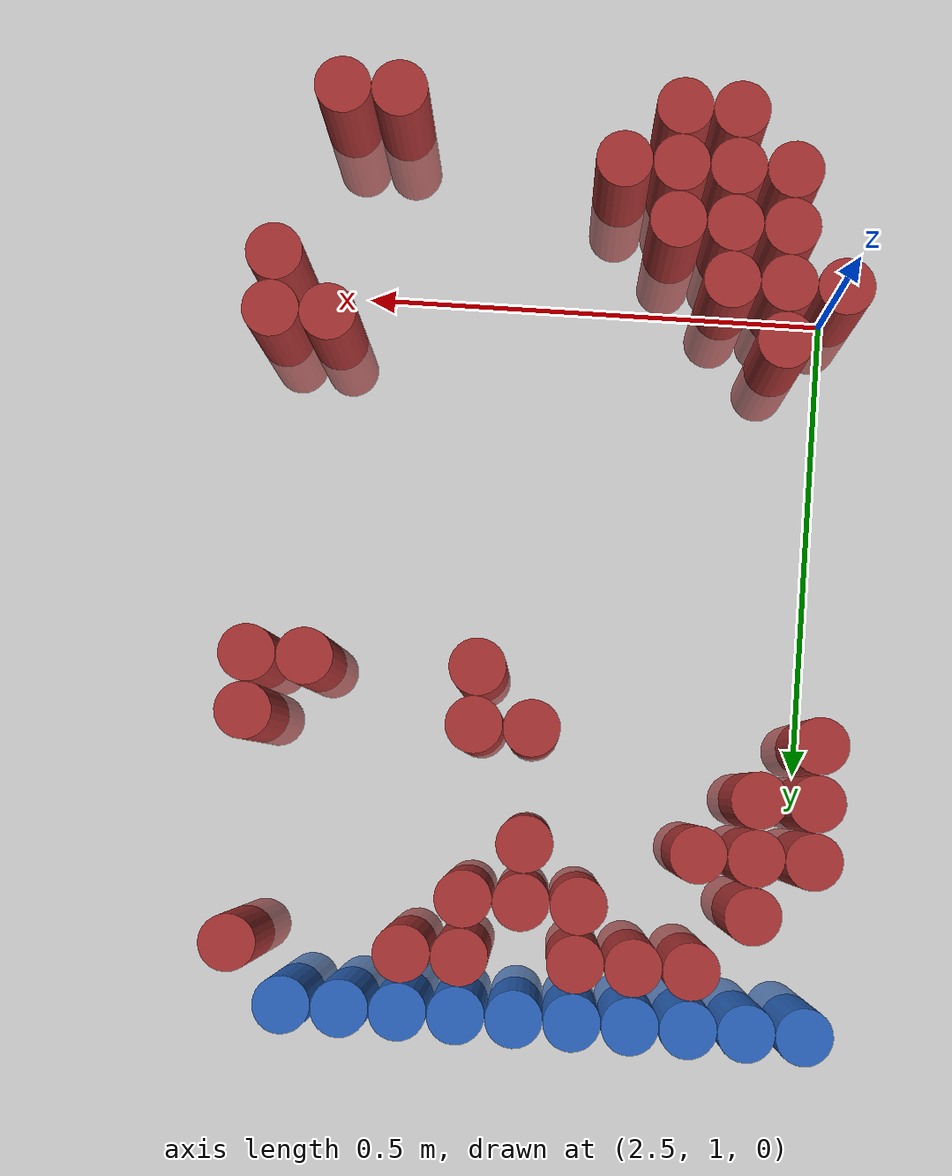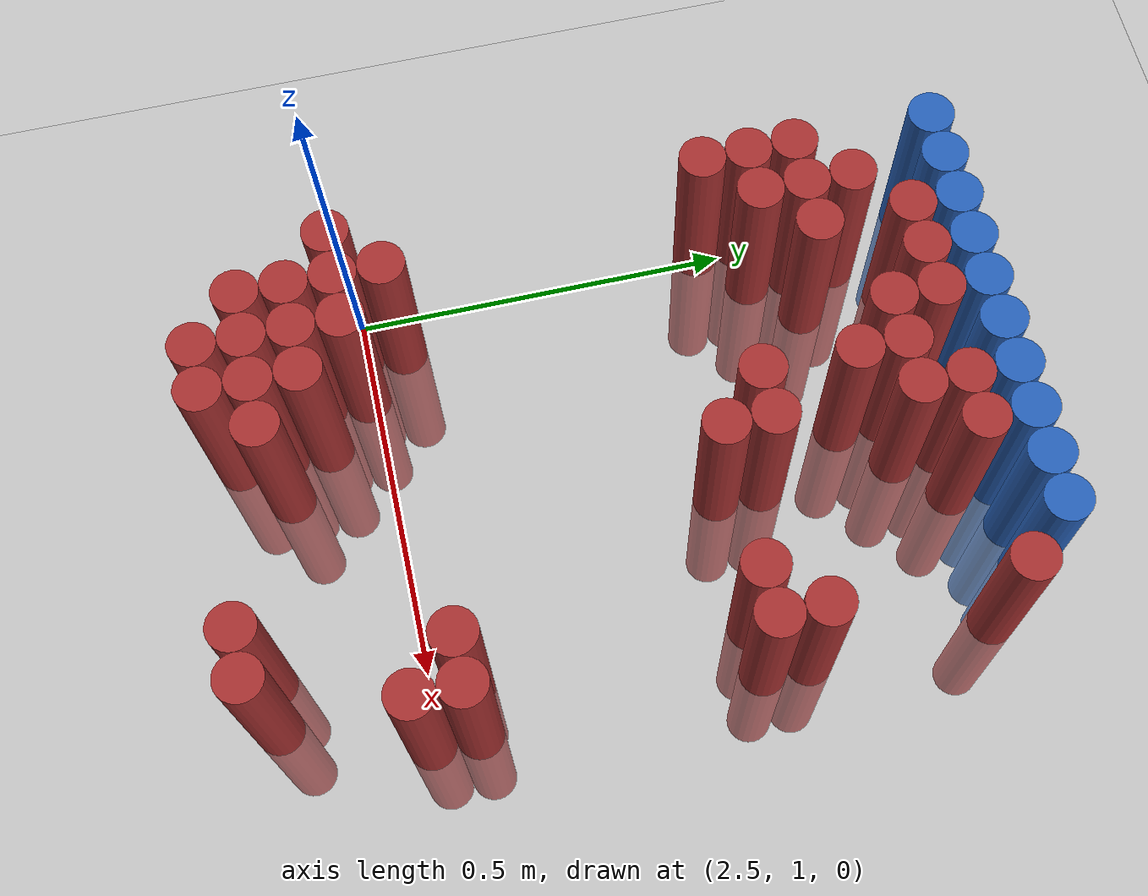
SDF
<sdf version="1.6">
 <world name="default">
  <model name="ground_plane">
   <static>1</static>
   <link name="link">
    <collision name="collision">
     <geometry><plane><normal>0 0 1</normal><size>100 100</size></plane></geometry>
     <surface><friction><ode><mu>100</mu><mu2>50</mu2></ode></friction></surface>
    </collision>
    <visual name="visual">
     <cast_shadows>0</cast_shadows>
     <geometry><plane><normal>0 0 1</normal><size>100 100</size></plane></geometry>
     <material>
      <script><uri>file://media/materials/scripts/gazebo.material</uri><name>Gazebo/Grey</name></script>
     </material>
    </visual>
   </link>
  </model>
  <model name="unit_cylinder_102">
   <static>1</static>
   <pose>2.490000 1.770000 0.000000 0.000000 0.000000 0.000000</pose>
   <link name="link">
    <inertial>
     <mass>1</mass>
     <inertia><ixx>0.145833</ixx><ixy>0</ixy><ixz>0</ixz><iyy>0.145833</iyy><iyz>0</iyz><izz>0.125</izz></inertia>
    </inertial>
    <collision name="collision">
     <geometry><cylinder><radius>0.030000</radius><length>0.5</length></cylinder></geometry>
    </collision>
    <visual name="visual">
     <geometry><cylinder><radius>0.030000</radius><length>0.5</length></cylinder></geometry>
     <material>
      <ambient>0.152000 0.379000 0.720000 1</ambient>
      <diffuse>0.152000 0.379000 0.720000 1</diffuse>
     </material>
     <material>
      <script><name>Gazebo/Grey</name><uri>file://media/materials/scripts/gazebo.material</uri></script>
     </material>
    </visual>
   </link>
  </model>
  <model name="unit_cylinder_103">
   <static>1</static>
   <pose>2.550000 1.770000 0.000000 0.000000 0.000000 0.000000</pose>
   <link name="link">
    <inertial>
     <mass>1</mass>
     <inertia><ixx>0.145833</ixx><ixy>0</ixy><ixz>0</ixz><iyy>0.145833</iyy><iyz>0</iyz><izz>0.125</izz></inertia>
    </inertial>
    <collision name="collision">
     <geometry><cylinder><radius>0.030000</radius><length>0.5</length></cylinder></geometry>
    </collision>
    <visual name="visual">
     <geometry><cylinder><radius>0.030000</radius><length>0.5</length></cylinder></geometry>
     <material>
      <ambient>0.152000 0.379000 0.720000 1</ambient>
      <diffuse>0.152000 0.379000 0.720000 1</diffuse>
     </material>
     <material>
      <script><name>Gazebo/Grey</name><uri>file://media/materials/scripts/gazebo.material</uri></script>
     </material>
    </visual>
   </link>
  </model>
  <model name="unit_cylinder_104">
   <static>1</static>
   <pose>2.610000 1.770000 0.000000 0.000000 0.000000 0.000000</pose>
   <link name="link">
    <inertial>
     <mass>1</mass>
     <inertia><ixx>0.145833</ixx><ixy>0</ixy><ixz>0</ixz><iyy>0.145833</iyy><iyz>0</iyz><izz>0.125</izz></inertia>
    </inertial>
    <collision name="collision">
     <geometry><cylinder><radius>0.030000</radius><length>0.5</length></cylinder></geometry>
    </collision>
    <visual name="visual">
     <geometry><cylinder><radius>0.030000</radius><length>0.5</length></cylinder></geometry>
     <material>
      <ambient>0.152000 0.379000 0.720000 1</ambient>
      <diffuse>0.152000 0.379000 0.720000 1</diffuse>
     </material>
     <material>
      <script><name>Gazebo/Grey</name><uri>file://media/materials/scripts/gazebo.material</uri></script>
     </material>
    </visual>
   </link>
  </model>
  <model name="unit_cylinder_105">
   <static>1</static>
   <pose>2.670000 1.770000 0.000000 0.000000 0.000000 0.000000</pose>
   <link name="link">
    <inertial>
     <mass>1</mass>
     <inertia><ixx>0.145833</ixx><ixy>0</ixy><ixz>0</ixz><iyy>0.145833</iyy><iyz>0</iyz><izz>0.125</izz></inertia>
    </inertial>
    <collision name="collision">
     <geometry><cylinder><radius>0.030000</radius><length>0.5</length></cylinder></geometry>
    </collision>
    <visual name="visual">
     <geometry><cylinder><radius>0.030000</radius><length>0.5</length></cylinder></geometry>
     <material>
      <ambient>0.152000 0.379000 0.720000 1</ambient>
      <diffuse>0.152000 0.379000 0.720000 1</diffuse>
     </material>
     <material>
      <script><name>Gazebo/Grey</name><uri>file://media/materials/scripts/gazebo.material</uri></script>
     </material>
    </visual>
   </link>
  </model>
  <model name="unit_cylinder_106">
   <static>1</static>
   <pose>2.730000 1.770000 0.000000 0.000000 0.000000 0.000000</pose>
   <link name="link">
    <inertial>
     <mass>1</mass>
     <inertia><ixx>0.145833</ixx><ixy>0</ixy><ixz>0</ixz><iyy>0.145833</iyy><iyz>0</iyz><izz>0.125</izz></inertia>
    </inertial>
    <collision name="collision">
     <geometry><cylinder><radius>0.030000</radius><length>0.5</length></cylinder></geometry>
    </collision>
    <visual name="visual">
     <geometry><cylinder><radius>0.030000</radius><length>0.5</length></cylinder></geometry>
     <material>
      <ambient>0.152000 0.379000 0.720000 1</ambient>
      <diffuse>0.152000 0.379000 0.720000 1</diffuse>
     </material>
     <material>
      <script><name>Gazebo/Grey</name><uri>file://media/materials/scripts/gazebo.material</uri></script>
     </material>
    </visual>
   </link>
  </model>
  <model name="unit_cylinder_107">
   <static>1</static>
   <pose>2.790000 1.770000 0.000000 0.000000 0.000000 0.000000</pose>
   <link name="link">
    <inertial>
     <mass>1</mass>
     <inertia><ixx>0.145833</ixx><ixy>0</ixy><ixz>0</ixz><iyy>0.145833</iyy><iyz>0</iyz><izz>0.125</izz></inertia>
    </inertial>
    <collision name="collision">
     <geometry><cylinder><radius>0.030000</radius><length>0.5</length></cylinder></geometry>
    </collision>
    <visual name="visual">
     <geometry><cylinder><radius>0.030000</radius><length>0.5</length></cylinder></geometry>
     <material>
      <ambient>0.152000 0.379000 0.720000 1</ambient>
      <diffuse>0.152000 0.379000 0.720000 1</diffuse>
     </material>
     <material>
      <script><name>Gazebo/Grey</name><uri>file://media/materials/scripts/gazebo.material</uri></script>
     </material>
    </visual>
   </link>
  </model>
  <model name="unit_cylinder_108">
   <static>1</static>
   <pose>2.850000 1.770000 0.000000 0.000000 0.000000 0.000000</pose>
   <link name="link">
    <inertial>
     <mass>1</mass>
     <inertia><ixx>0.145833</ixx><ixy>0</ixy><ixz>0</ixz><iyy>0.145833</iyy><iyz>0</iyz><izz>0.125</izz></inertia>
    </inertial>
    <collision name="collision">
     <geometry><cylinder><radius>0.030000</radius><length>0.5</length></cylinder></geometry>
    </collision>
    <visual name="visual">
     <geometry><cylinder><radius>0.030000</radius><length>0.5</length></cylinder></geometry>
     <material>
      <ambient>0.152000 0.379000 0.720000 1</ambient>
      <diffuse>0.152000 0.379000 0.720000 1</diffuse>
     </material>
     <material>
      <script><name>Gazebo/Grey</name><uri>file://media/materials/scripts/gazebo.material</uri></script>
     </material>
    </visual>
   </link>
  </model>
  <model name="unit_cylinder_109">
   <static>1</static>
   <pose>2.910000 1.770000 0.000000 0.000000 0.000000 0.000000</pose>
   <link name="link">
    <inertial>
     <mass>1</mass>
     <inertia><ixx>0.145833</ixx><ixy>0</ixy><ixz>0</ixz><iyy>0.145833</iyy><iyz>0</iyz><izz>0.125</izz></inertia>
    </inertial>
    <collision name="collision">
     <geometry><cylinder><radius>0.030000</radius><length>0.5</length></cylinder></geometry>
    </collision>
    <visual name="visual">
     <geometry><cylinder><radius>0.030000</radius><length>0.5</length></cylinder></geometry>
     <material>
      <ambient>0.152000 0.379000 0.720000 1</ambient>
      <diffuse>0.152000 0.379000 0.720000 1</diffuse>
     </material>
     <material>
      <script><name>Gazebo/Grey</name><uri>file://media/materials/scripts/gazebo.material</uri></script>
     </material>
    </visual>
   </link>
  </model>
  <model name="unit_cylinder_110">
   <static>1</static>
   <pose>2.970000 1.770000 0.000000 0.000000 0.000000 0.000000</pose>
   <link name="link">
    <inertial>
     <mass>1</mass>
     <inertia><ixx>0.145833</ixx><ixy>0</ixy><ixz>0</ixz><iyy>0.145833</iyy><iyz>0</iyz><izz>0.125</izz></inertia>
    </inertial>
    <collision name="collision">
     <geometry><cylinder><radius>0.030000</radius><length>0.5</length></cylinder></geometry>
    </collision>
    <visual name="visual">
     <geometry><cylinder><radius>0.030000</radius><length>0.5</length></cylinder></geometry>
     <material>
      <ambient>0.152000 0.379000 0.720000 1</ambient>
      <diffuse>0.152000 0.379000 0.720000 1</diffuse>
     </material>
     <material>
      <script><name>Gazebo/Grey</name><uri>file://media/materials/scripts/gazebo.material</uri></script>
     </material>
    </visual>
   </link>
  </model>
  <model name="unit_cylinder_111">
   <static>1</static>
   <pose>3.030000 1.770000 0.000000 0.000000 0.000000 0.000000</pose>
   <link name="link">
    <inertial>
     <mass>1</mass>
     <inertia><ixx>0.145833</ixx><ixy>0</ixy><ixz>0</ixz><iyy>0.145833</iyy><iyz>0</iyz><izz>0.125</izz></inertia>
    </inertial>
    <collision name="collision">
     <geometry><cylinder><radius>0.030000</radius><length>0.5</length></cylinder></geometry>
    </collision>
    <visual name="visual">
     <geometry><cylinder><radius>0.030000</radius><length>0.5</length></cylinder></geometry>
     <material>
      <ambient>0.152000 0.379000 0.720000 1</ambient>
      <diffuse>0.152000 0.379000 0.720000 1</diffuse>
     </material>
     <material>
      <script><name>Gazebo/Grey</name><uri>file://media/materials/scripts/gazebo.material</uri></script>
     </material>
    </visual>
   </link>
  </model>
  <model name="unit_cylinder_128">
   <static>1</static>
   <pose>2.610000 1.710000 0.000000 0.000000 0.000000 0.000000</pose>
   <link name="link">
    <inertial>
     <mass>1</mass>
     <inertia><ixx>0.145833</ixx><ixy>0</ixy><ixz>0</ixz><iyy>0.145833</iyy><iyz>0</iyz><izz>0.125</izz></inertia>
    </inertial>
    <collision name="collision">
     <geometry><cylinder><radius>0.030000</radius><length>0.5</length></cylinder></geometry>
    </collision>
    <visual name="visual">
     <geometry><cylinder><radius>0.030000</radius><length>0.5</length></cylinder></geometry>
     <material>
      <ambient>0.648000 0.192000 0.192000 1</ambient>
      <diffuse>0.648000 0.192000 0.192000 1</diffuse>
     </material>
     <material>
      <script><name>Gazebo/Grey</name><uri>file://media/materials/scripts/gazebo.material</uri></script>
     </material>
    </visual>
   </link>
  </model>
  <model name="unit_cylinder_129">
   <static>1</static>
   <pose>2.670000 1.710000 0.000000 0.000000 0.000000 0.000000</pose>
   <link name="link">
    <inertial>
     <mass>1</mass>
     <inertia><ixx>0.145833</ixx><ixy>0</ixy><ixz>0</ixz><iyy>0.145833</iyy><iyz>0</iyz><izz>0.125</izz></inertia>
    </inertial>
    <collision name="collision">
     <geometry><cylinder><radius>0.030000</radius><length>0.5</length></cylinder></geometry>
    </collision>
    <visual name="visual">
     <geometry><cylinder><radius>0.030000</radius><length>0.5</length></cylinder></geometry>
     <material>
      <ambient>0.648000 0.192000 0.192000 1</ambient>
      <diffuse>0.648000 0.192000 0.192000 1</diffuse>
     </material>
     <material>
      <script><name>Gazebo/Grey</name><uri>file://media/materials/scripts/gazebo.material</uri></script>
     </material>
    </visual>
   </link>
  </model>
  <model name="unit_cylinder_130">
   <static>1</static>
   <pose>2.730000 1.710000 0.000000 0.000000 0.000000 0.000000</pose>
   <link name="link">
    <inertial>
     <mass>1</mass>
     <inertia><ixx>0.145833</ixx><ixy>0</ixy><ixz>0</ixz><iyy>0.145833</iyy><iyz>0</iyz><izz>0.125</izz></inertia>
    </inertial>
    <collision name="collision">
     <geometry><cylinder><radius>0.030000</radius><length>0.5</length></cylinder></geometry>
    </collision>
    <visual name="visual">
     <geometry><cylinder><radius>0.030000</radius><length>0.5</length></cylinder></geometry>
     <material>
      <ambient>0.648000 0.192000 0.192000 1</ambient>
      <diffuse>0.648000 0.192000 0.192000 1</diffuse>
     </material>
     <material>
      <script><name>Gazebo/Grey</name><uri>file://media/materials/scripts/gazebo.material</uri></script>
     </material>
    </visual>
   </link>
  </model>
  <model name="unit_cylinder_131">
   <static>1</static>
   <pose>2.850000 1.710000 0.000000 0.000000 0.000000 0.000000</pose>
   <link name="link">
    <inertial>
     <mass>1</mass>
     <inertia><ixx>0.145833</ixx><ixy>0</ixy><ixz>0</ixz><iyy>0.145833</iyy><iyz>0</iyz><izz>0.125</izz></inertia>
    </inertial>
    <collision name="collision">
     <geometry><cylinder><radius>0.030000</radius><length>0.5</length></cylinder></geometry>
    </collision>
    <visual name="visual">
     <geometry><cylinder><radius>0.030000</radius><length>0.5</length></cylinder></geometry>
     <material>
      <ambient>0.648000 0.192000 0.192000 1</ambient>
      <diffuse>0.648000 0.192000 0.192000 1</diffuse>
     </material>
     <material>
      <script><name>Gazebo/Grey</name><uri>file://media/materials/scripts/gazebo.material</uri></script>
     </material>
    </visual>
   </link>
  </model>
  <model name="unit_cylinder_132">
   <static>1</static>
   <pose>2.910000 1.710000 0.000000 0.000000 0.000000 0.000000</pose>
   <link name="link">
    <inertial>
     <mass>1</mass>
     <inertia><ixx>0.145833</ixx><ixy>0</ixy><ixz>0</ixz><iyy>0.145833</iyy><iyz>0</iyz><izz>0.125</izz></inertia>
    </inertial>
    <collision name="collision">
     <geometry><cylinder><radius>0.030000</radius><length>0.5</length></cylinder></geometry>
    </collision>
    <visual name="visual">
     <geometry><cylinder><radius>0.030000</radius><length>0.5</length></cylinder></geometry>
     <material>
      <ambient>0.648000 0.192000 0.192000 1</ambient>
      <diffuse>0.648000 0.192000 0.192000 1</diffuse>
     </material>
     <material>
      <script><name>Gazebo/Grey</name><uri>file://media/materials/scripts/gazebo.material</uri></script>
     </material>
    </visual>
   </link>
  </model>
  <model name="unit_cylinder_133">
   <static>1</static>
   <pose>3.090000 1.710000 0.000000 0.000000 0.000000 0.000000</pose>
   <link name="link">
    <inertial>
     <mass>1</mass>
     <inertia><ixx>0.145833</ixx><ixy>0</ixy><ixz>0</ixz><iyy>0.145833</iyy><iyz>0</iyz><izz>0.125</izz></inertia>
    </inertial>
    <collision name="collision">
     <geometry><cylinder><radius>0.030000</radius><length>0.5</length></cylinder></geometry>
    </collision>
    <visual name="visual">
     <geometry><cylinder><radius>0.030000</radius><length>0.5</length></cylinder></geometry>
     <material>
      <ambient>0.648000 0.192000 0.192000 1</ambient>
      <diffuse>0.648000 0.192000 0.192000 1</diffuse>
     </material>
     <material>
      <script><name>Gazebo/Grey</name><uri>file://media/materials/scripts/gazebo.material</uri></script>
     </material>
    </visual>
   </link>
  </model>
  <model name="unit_cylinder_142">
   <static>1</static>
   <pose>2.550000 1.650000 0.000000 0.000000 0.000000 0.000000</pose>
   <link name="link">
    <inertial>
     <mass>1</mass>
     <inertia><ixx>0.145833</ixx><ixy>0</ixy><ixz>0</ixz><iyy>0.145833</iyy><iyz>0</iyz><izz>0.125</izz></inertia>
    </inertial>
    <collision name="collision">
     <geometry><cylinder><radius>0.030000</radius><length>0.5</length></cylinder></geometry>
    </collision>
    <visual name="visual">
     <geometry><cylinder><radius>0.030000</radius><length>0.5</length></cylinder></geometry>
     <material>
      <ambient>0.648000 0.192000 0.192000 1</ambient>
      <diffuse>0.648000 0.192000 0.192000 1</diffuse>
     </material>
     <material>
      <script><name>Gazebo/Grey</name><uri>file://media/materials/scripts/gazebo.material</uri></script>
     </material>
    </visual>
   </link>
  </model>
  <model name="unit_cylinder_143">
   <static>1</static>
   <pose>2.730000 1.650000 0.000000 0.000000 0.000000 0.000000</pose>
   <link name="link">
    <inertial>
     <mass>1</mass>
     <inertia><ixx>0.145833</ixx><ixy>0</ixy><ixz>0</ixz><iyy>0.145833</iyy><iyz>0</iyz><izz>0.125</izz></inertia>
    </inertial>
    <collision name="collision">
     <geometry><cylinder><radius>0.030000</radius><length>0.5</length></cylinder></geometry>
    </collision>
    <visual name="visual">
     <geometry><cylinder><radius>0.030000</radius><length>0.5</length></cylinder></geometry>
     <material>
      <ambient>0.648000 0.192000 0.192000 1</ambient>
      <diffuse>0.648000 0.192000 0.192000 1</diffuse>
     </material>
     <material>
      <script><name>Gazebo/Grey</name><uri>file://media/materials/scripts/gazebo.material</uri></script>
     </material>
    </visual>
   </link>
  </model>
  <model name="unit_cylinder_144">
   <static>1</static>
   <pose>2.790000 1.650000 0.000000 0.000000 0.000000 0.000000</pose>
   <link name="link">
    <inertial>
     <mass>1</mass>
     <inertia><ixx>0.145833</ixx><ixy>0</ixy><ixz>0</ixz><iyy>0.145833</iyy><iyz>0</iyz><izz>0.125</izz></inertia>
    </inertial>
    <collision name="collision">
     <geometry><cylinder><radius>0.030000</radius><length>0.5</length></cylinder></geometry>
    </collision>
    <visual name="visual">
     <geometry><cylinder><radius>0.030000</radius><length>0.5</length></cylinder></geometry>
     <material>
      <ambient>0.648000 0.192000 0.192000 1</ambient>
      <diffuse>0.648000 0.192000 0.192000 1</diffuse>
     </material>
     <material>
      <script><name>Gazebo/Grey</name><uri>file://media/materials/scripts/gazebo.material</uri></script>
     </material>
    </visual>
   </link>
  </model>
  <model name="unit_cylinder_145">
   <static>1</static>
   <pose>2.850000 1.650000 0.000000 0.000000 0.000000 0.000000</pose>
   <link name="link">
    <inertial>
     <mass>1</mass>
     <inertia><ixx>0.145833</ixx><ixy>0</ixy><ixz>0</ixz><iyy>0.145833</iyy><iyz>0</iyz><izz>0.125</izz></inertia>
    </inertial>
    <collision name="collision">
     <geometry><cylinder><radius>0.030000</radius><length>0.5</length></cylinder></geometry>
    </collision>
    <visual name="visual">
     <geometry><cylinder><radius>0.030000</radius><length>0.5</length></cylinder></geometry>
     <material>
      <ambient>0.648000 0.192000 0.192000 1</ambient>
      <diffuse>0.648000 0.192000 0.192000 1</diffuse>
     </material>
     <material>
      <script><name>Gazebo/Grey</name><uri>file://media/materials/scripts/gazebo.material</uri></script>
     </material>
    </visual>
   </link>
  </model>
  <model name="unit_cylinder_152">
   <static>1</static>
   <pose>2.490000 1.590000 0.000000 0.000000 0.000000 0.000000</pose>
   <link name="link">
    <inertial>
     <mass>1</mass>
     <inertia><ixx>0.145833</ixx><ixy>0</ixy><ixz>0</ixz><iyy>0.145833</iyy><iyz>0</iyz><izz>0.125</izz></inertia>
    </inertial>
    <collision name="collision">
     <geometry><cylinder><radius>0.030000</radius><length>0.5</length></cylinder></geometry>
    </collision>
    <visual name="visual">
     <geometry><cylinder><radius>0.030000</radius><length>0.5</length></cylinder></geometry>
     <material>
      <ambient>0.648000 0.192000 0.192000 1</ambient>
      <diffuse>0.648000 0.192000 0.192000 1</diffuse>
     </material>
     <material>
      <script><name>Gazebo/Grey</name><uri>file://media/materials/scripts/gazebo.material</uri></script>
     </material>
    </visual>
   </link>
  </model>
  <model name="unit_cylinder_153">
   <static>1</static>
   <pose>2.550000 1.590000 0.000000 0.000000 0.000000 0.000000</pose>
   <link name="link">
    <inertial>
     <mass>1</mass>
     <inertia><ixx>0.145833</ixx><ixy>0</ixy><ixz>0</ixz><iyy>0.145833</iyy><iyz>0</iyz><izz>0.125</izz></inertia>
    </inertial>
    <collision name="collision">
     <geometry><cylinder><radius>0.030000</radius><length>0.5</length></cylinder></geometry>
    </collision>
    <visual name="visual">
     <geometry><cylinder><radius>0.030000</radius><length>0.5</length></cylinder></geometry>
     <material>
      <ambient>0.648000 0.192000 0.192000 1</ambient>
      <diffuse>0.648000 0.192000 0.192000 1</diffuse>
     </material>
     <material>
      <script><name>Gazebo/Grey</name><uri>file://media/materials/scripts/gazebo.material</uri></script>
     </material>
    </visual>
   </link>
  </model>
  <model name="unit_cylinder_154">
   <static>1</static>
   <pose>2.610000 1.590000 0.000000 0.000000 0.000000 0.000000</pose>
   <link name="link">
    <inertial>
     <mass>1</mass>
     <inertia><ixx>0.145833</ixx><ixy>0</ixy><ixz>0</ixz><iyy>0.145833</iyy><iyz>0</iyz><izz>0.125</izz></inertia>
    </inertial>
    <collision name="collision">
     <geometry><cylinder><radius>0.030000</radius><length>0.5</length></cylinder></geometry>
    </collision>
    <visual name="visual">
     <geometry><cylinder><radius>0.030000</radius><length>0.5</length></cylinder></geometry>
     <material>
      <ambient>0.648000 0.192000 0.192000 1</ambient>
      <diffuse>0.648000 0.192000 0.192000 1</diffuse>
     </material>
     <material>
      <script><name>Gazebo/Grey</name><uri>file://media/materials/scripts/gazebo.material</uri></script>
     </material>
    </visual>
   </link>
  </model>
  <model name="unit_cylinder_155">
   <static>1</static>
   <pose>2.790000 1.590000 0.000000 0.000000 0.000000 0.000000</pose>
   <link name="link">
    <inertial>
     <mass>1</mass>
     <inertia><ixx>0.145833</ixx><ixy>0</ixy><ixz>0</ixz><iyy>0.145833</iyy><iyz>0</iyz><izz>0.125</izz></inertia>
    </inertial>
    <collision name="collision">
     <geometry><cylinder><radius>0.030000</radius><length>0.5</length></cylinder></geometry>
    </collision>
    <visual name="visual">
     <geometry><cylinder><radius>0.030000</radius><length>0.5</length></cylinder></geometry>
     <material>
      <ambient>0.648000 0.192000 0.192000 1</ambient>
      <diffuse>0.648000 0.192000 0.192000 1</diffuse>
     </material>
     <material>
      <script><name>Gazebo/Grey</name><uri>file://media/materials/scripts/gazebo.material</uri></script>
     </material>
    </visual>
   </link>
  </model>
  <model name="unit_cylinder_161">
   <static>1</static>
   <pose>2.490000 1.530000 0.000000 0.000000 0.000000 0.000000</pose>
   <link name="link">
    <inertial>
     <mass>1</mass>
     <inertia><ixx>0.145833</ixx><ixy>0</ixy><ixz>0</ixz><iyy>0.145833</iyy><iyz>0</iyz><izz>0.125</izz></inertia>
    </inertial>
    <collision name="collision">
     <geometry><cylinder><radius>0.030000</radius><length>0.5</length></cylinder></geometry>
    </collision>
    <visual name="visual">
     <geometry><cylinder><radius>0.030000</radius><length>0.5</length></cylinder></geometry>
     <material>
      <ambient>0.648000 0.192000 0.192000 1</ambient>
      <diffuse>0.648000 0.192000 0.192000 1</diffuse>
     </material>
     <material>
      <script><name>Gazebo/Grey</name><uri>file://media/materials/scripts/gazebo.material</uri></script>
     </material>
    </visual>
   </link>
  </model>
  <model name="unit_cylinder_162">
   <static>1</static>
   <pose>2.550000 1.530000 0.000000 0.000000 0.000000 0.000000</pose>
   <link name="link">
    <inertial>
     <mass>1</mass>
     <inertia><ixx>0.145833</ixx><ixy>0</ixy><ixz>0</ixz><iyy>0.145833</iyy><iyz>0</iyz><izz>0.125</izz></inertia>
    </inertial>
    <collision name="collision">
     <geometry><cylinder><radius>0.030000</radius><length>0.5</length></cylinder></geometry>
    </collision>
    <visual name="visual">
     <geometry><cylinder><radius>0.030000</radius><length>0.5</length></cylinder></geometry>
     <material>
      <ambient>0.648000 0.192000 0.192000 1</ambient>
      <diffuse>0.648000 0.192000 0.192000 1</diffuse>
     </material>
     <material>
      <script><name>Gazebo/Grey</name><uri>file://media/materials/scripts/gazebo.material</uri></script>
     </material>
    </visual>
   </link>
  </model>
  <model name="unit_cylinder_169">
   <static>1</static>
   <pose>2.490000 1.470000 0.000000 0.000000 0.000000 0.000000</pose>
   <link name="link">
    <inertial>
     <mass>1</mass>
     <inertia><ixx>0.145833</ixx><ixy>0</ixy><ixz>0</ixz><iyy>0.145833</iyy><iyz>0</iyz><izz>0.125</izz></inertia>
    </inertial>
    <collision name="collision">
     <geometry><cylinder><radius>0.030000</radius><length>0.5</length></cylinder></geometry>
    </collision>
    <visual name="visual">
     <geometry><cylinder><radius>0.030000</radius><length>0.5</length></cylinder></geometry>
     <material>
      <ambient>0.648000 0.192000 0.192000 1</ambient>
      <diffuse>0.648000 0.192000 0.192000 1</diffuse>
     </material>
     <material>
      <script><name>Gazebo/Grey</name><uri>file://media/materials/scripts/gazebo.material</uri></script>
     </material>
    </visual>
   </link>
  </model>
  <model name="unit_cylinder_170">
   <static>1</static>
   <pose>2.790000 1.470000 0.000000 0.000000 0.000000 0.000000</pose>
   <link name="link">
    <inertial>
     <mass>1</mass>
     <inertia><ixx>0.145833</ixx><ixy>0</ixy><ixz>0</ixz><iyy>0.145833</iyy><iyz>0</iyz><izz>0.125</izz></inertia>
    </inertial>
    <collision name="collision">
     <geometry><cylinder><radius>0.030000</radius><length>0.5</length></cylinder></geometry>
    </collision>
    <visual name="visual">
     <geometry><cylinder><radius>0.030000</radius><length>0.5</length></cylinder></geometry>
     <material>
      <ambient>0.648000 0.192000 0.192000 1</ambient>
      <diffuse>0.648000 0.192000 0.192000 1</diffuse>
     </material>
     <material>
      <script><name>Gazebo/Grey</name><uri>file://media/materials/scripts/gazebo.material</uri></script>
     </material>
    </visual>
   </link>
  </model>
  <model name="unit_cylinder_171">
   <static>1</static>
   <pose>2.850000 1.470000 0.000000 0.000000 0.000000 0.000000</pose>
   <link name="link">
    <inertial>
     <mass>1</mass>
     <inertia><ixx>0.145833</ixx><ixy>0</ixy><ixz>0</ixz><iyy>0.145833</iyy><iyz>0</iyz><izz>0.125</izz></inertia>
    </inertial>
    <collision name="collision">
     <geometry><cylinder><radius>0.030000</radius><length>0.5</length></cylinder></geometry>
    </collision>
    <visual name="visual">
     <geometry><cylinder><radius>0.030000</radius><length>0.5</length></cylinder></geometry>
     <material>
      <ambient>0.648000 0.192000 0.192000 1</ambient>
      <diffuse>0.648000 0.192000 0.192000 1</diffuse>
     </material>
     <material>
      <script><name>Gazebo/Grey</name><uri>file://media/materials/scripts/gazebo.material</uri></script>
     </material>
    </visual>
   </link>
  </model>
  <model name="unit_cylinder_172">
   <static>1</static>
   <pose>3.090000 1.470000 0.000000 0.000000 0.000000 0.000000</pose>
   <link name="link">
    <inertial>
     <mass>1</mass>
     <inertia><ixx>0.145833</ixx><ixy>0</ixy><ixz>0</ixz><iyy>0.145833</iyy><iyz>0</iyz><izz>0.125</izz></inertia>
    </inertial>
    <collision name="collision">
     <geometry><cylinder><radius>0.030000</radius><length>0.5</length></cylinder></geometry>
    </collision>
    <visual name="visual">
     <geometry><cylinder><radius>0.030000</radius><length>0.5</length></cylinder></geometry>
     <material>
      <ambient>0.648000 0.192000 0.192000 1</ambient>
      <diffuse>0.648000 0.192000 0.192000 1</diffuse>
     </material>
     <material>
      <script><name>Gazebo/Grey</name><uri>file://media/materials/scripts/gazebo.material</uri></script>
     </material>
    </visual>
   </link>
  </model>
  <model name="unit_cylinder_177">
   <static>1</static>
   <pose>2.850000 1.410000 0.000000 0.000000 0.000000 0.000000</pose>
   <link name="link">
    <inertial>
     <mass>1</mass>
     <inertia><ixx>0.145833</ixx><ixy>0</ixy><ixz>0</ixz><iyy>0.145833</iyy><iyz>0</iyz><izz>0.125</izz></inertia>
    </inertial>
    <collision name="collision">
     <geometry><cylinder><radius>0.030000</radius><length>0.5</length></cylinder></geometry>
    </collision>
    <visual name="visual">
     <geometry><cylinder><radius>0.030000</radius><length>0.5</length></cylinder></geometry>
     <material>
      <ambient>0.648000 0.192000 0.192000 1</ambient>
      <diffuse>0.648000 0.192000 0.192000 1</diffuse>
     </material>
     <material>
      <script><name>Gazebo/Grey</name><uri>file://media/materials/scripts/gazebo.material</uri></script>
     </material>
    </visual>
   </link>
  </model>
  <model name="unit_cylinder_178">
   <static>1</static>
   <pose>3.030000 1.410000 0.000000 0.000000 0.000000 0.000000</pose>
   <link name="link">
    <inertial>
     <mass>1</mass>
     <inertia><ixx>0.145833</ixx><ixy>0</ixy><ixz>0</ixz><iyy>0.145833</iyy><iyz>0</iyz><izz>0.125</izz></inertia>
    </inertial>
    <collision name="collision">
     <geometry><cylinder><radius>0.030000</radius><length>0.5</length></cylinder></geometry>
    </collision>
    <visual name="visual">
     <geometry><cylinder><radius>0.030000</radius><length>0.5</length></cylinder></geometry>
     <material>
      <ambient>0.648000 0.192000 0.192000 1</ambient>
      <diffuse>0.648000 0.192000 0.192000 1</diffuse>
     </material>
     <material>
      <script><name>Gazebo/Grey</name><uri>file://media/materials/scripts/gazebo.material</uri></script>
     </material>
    </visual>
   </link>
  </model>
  <model name="unit_cylinder_179">
   <static>1</static>
   <pose>3.090000 1.410000 0.000000 0.000000 0.000000 0.000000</pose>
   <link name="link">
    <inertial>
     <mass>1</mass>
     <inertia><ixx>0.145833</ixx><ixy>0</ixy><ixz>0</ixz><iyy>0.145833</iyy><iyz>0</iyz><izz>0.125</izz></inertia>
    </inertial>
    <collision name="collision">
     <geometry><cylinder><radius>0.030000</radius><length>0.5</length></cylinder></geometry>
    </collision>
    <visual name="visual">
     <geometry><cylinder><radius>0.030000</radius><length>0.5</length></cylinder></geometry>
     <material>
      <ambient>0.648000 0.192000 0.192000 1</ambient>
      <diffuse>0.648000 0.192000 0.192000 1</diffuse>
     </material>
     <material>
      <script><name>Gazebo/Grey</name><uri>file://media/materials/scripts/gazebo.material</uri></script>
     </material>
    </visual>
   </link>
  </model>
  <model name="unit_cylinder_184">
   <static>1</static>
   <pose>2.550000 1.050000 0.000000 0.000000 0.000000 0.000000</pose>
   <link name="link">
    <inertial>
     <mass>1</mass>
     <inertia><ixx>0.145833</ixx><ixy>0</ixy><ixz>0</ixz><iyy>0.145833</iyy><iyz>0</iyz><izz>0.125</izz></inertia>
    </inertial>
    <collision name="collision">
     <geometry><cylinder><radius>0.030000</radius><length>0.5</length></cylinder></geometry>
    </collision>
    <visual name="visual">
     <geometry><cylinder><radius>0.030000</radius><length>0.5</length></cylinder></geometry>
     <material>
      <ambient>0.648000 0.192000 0.192000 1</ambient>
      <diffuse>0.648000 0.192000 0.192000 1</diffuse>
     </material>
     <material>
      <script><name>Gazebo/Grey</name><uri>file://media/materials/scripts/gazebo.material</uri></script>
     </material>
    </visual>
   </link>
  </model>
  <model name="unit_cylinder_185">
   <static>1</static>
   <pose>3.030000 1.050000 0.000000 0.000000 0.000000 0.000000</pose>
   <link name="link">
    <inertial>
     <mass>1</mass>
     <inertia><ixx>0.145833</ixx><ixy>0</ixy><ixz>0</ixz><iyy>0.145833</iyy><iyz>0</iyz><izz>0.125</izz></inertia>
    </inertial>
    <collision name="collision">
     <geometry><cylinder><radius>0.030000</radius><length>0.5</length></cylinder></geometry>
    </collision>
    <visual name="visual">
     <geometry><cylinder><radius>0.030000</radius><length>0.5</length></cylinder></geometry>
     <material>
      <ambient>0.648000 0.192000 0.192000 1</ambient>
      <diffuse>0.648000 0.192000 0.192000 1</diffuse>
     </material>
     <material>
      <script><name>Gazebo/Grey</name><uri>file://media/materials/scripts/gazebo.material</uri></script>
     </material>
    </visual>
   </link>
  </model>
  <model name="unit_cylinder_186">
   <static>1</static>
   <pose>3.090000 1.050000 0.000000 0.000000 0.000000 0.000000</pose>
   <link name="link">
    <inertial>
     <mass>1</mass>
     <inertia><ixx>0.145833</ixx><ixy>0</ixy><ixz>0</ixz><iyy>0.145833</iyy><iyz>0</iyz><izz>0.125</izz></inertia>
    </inertial>
    <collision name="collision">
     <geometry><cylinder><radius>0.030000</radius><length>0.5</length></cylinder></geometry>
    </collision>
    <visual name="visual">
     <geometry><cylinder><radius>0.030000</radius><length>0.5</length></cylinder></geometry>
     <material>
      <ambient>0.648000 0.192000 0.192000 1</ambient>
      <diffuse>0.648000 0.192000 0.192000 1</diffuse>
     </material>
     <material>
      <script><name>Gazebo/Grey</name><uri>file://media/materials/scripts/gazebo.material</uri></script>
     </material>
    </visual>
   </link>
  </model>
  <model name="unit_cylinder_187">
   <static>1</static>
   <pose>2.490000 0.990000 0.000000 0.000000 0.000000 0.000000</pose>
   <link name="link">
    <inertial>
     <mass>1</mass>
     <inertia><ixx>0.145833</ixx><ixy>0</ixy><ixz>0</ixz><iyy>0.145833</iyy><iyz>0</iyz><izz>0.125</izz></inertia>
    </inertial>
    <collision name="collision">
     <geometry><cylinder><radius>0.030000</radius><length>0.5</length></cylinder></geometry>
    </collision>
    <visual name="visual">
     <geometry><cylinder><radius>0.030000</radius><length>0.5</length></cylinder></geometry>
     <material>
      <ambient>0.648000 0.192000 0.192000 1</ambient>
      <diffuse>0.648000 0.192000 0.192000 1</diffuse>
     </material>
     <material>
      <script><name>Gazebo/Grey</name><uri>file://media/materials/scripts/gazebo.material</uri></script>
     </material>
    </visual>
   </link>
  </model>
  <model name="unit_cylinder_188">
   <static>1</static>
   <pose>2.550000 0.990000 0.000000 0.000000 0.000000 0.000000</pose>
   <link name="link">
    <inertial>
     <mass>1</mass>
     <inertia><ixx>0.145833</ixx><ixy>0</ixy><ixz>0</ixz><iyy>0.145833</iyy><iyz>0</iyz><izz>0.125</izz></inertia>
    </inertial>
    <collision name="collision">
     <geometry><cylinder><radius>0.030000</radius><length>0.5</length></cylinder></geometry>
    </collision>
    <visual name="visual">
     <geometry><cylinder><radius>0.030000</radius><length>0.5</length></cylinder></geometry>
     <material>
      <ambient>0.648000 0.192000 0.192000 1</ambient>
      <diffuse>0.648000 0.192000 0.192000 1</diffuse>
     </material>
     <material>
      <script><name>Gazebo/Grey</name><uri>file://media/materials/scripts/gazebo.material</uri></script>
     </material>
    </visual>
   </link>
  </model>
  <model name="unit_cylinder_189">
   <static>1</static>
   <pose>2.610000 0.990000 0.000000 0.000000 0.000000 0.000000</pose>
   <link name="link">
    <inertial>
     <mass>1</mass>
     <inertia><ixx>0.145833</ixx><ixy>0</ixy><ixz>0</ixz><iyy>0.145833</iyy><iyz>0</iyz><izz>0.125</izz></inertia>
    </inertial>
    <collision name="collision">
     <geometry><cylinder><radius>0.030000</radius><length>0.5</length></cylinder></geometry>
    </collision>
    <visual name="visual">
     <geometry><cylinder><radius>0.030000</radius><length>0.5</length></cylinder></geometry>
     <material>
      <ambient>0.648000 0.192000 0.192000 1</ambient>
      <diffuse>0.648000 0.192000 0.192000 1</diffuse>
     </material>
     <material>
      <script><name>Gazebo/Grey</name><uri>file://media/materials/scripts/gazebo.material</uri></script>
     </material>
    </visual>
   </link>
  </model>
  <model name="unit_cylinder_190">
   <static>1</static>
   <pose>3.090000 0.990000 0.000000 0.000000 0.000000 0.000000</pose>
   <link name="link">
    <inertial>
     <mass>1</mass>
     <inertia><ixx>0.145833</ixx><ixy>0</ixy><ixz>0</ixz><iyy>0.145833</iyy><iyz>0</iyz><izz>0.125</izz></inertia>
    </inertial>
    <collision name="collision">
     <geometry><cylinder><radius>0.030000</radius><length>0.5</length></cylinder></geometry>
    </collision>
    <visual name="visual">
     <geometry><cylinder><radius>0.030000</radius><length>0.5</length></cylinder></geometry>
     <material>
      <ambient>0.648000 0.192000 0.192000 1</ambient>
      <diffuse>0.648000 0.192000 0.192000 1</diffuse>
     </material>
     <material>
      <script><name>Gazebo/Grey</name><uri>file://media/materials/scripts/gazebo.material</uri></script>
     </material>
    </visual>
   </link>
  </model>
  <model name="unit_cylinder_192">
   <static>1</static>
   <pose>2.550000 0.930000 0.000000 0.000000 0.000000 0.000000</pose>
   <link name="link">
    <inertial>
     <mass>1</mass>
     <inertia><ixx>0.145833</ixx><ixy>0</ixy><ixz>0</ixz><iyy>0.145833</iyy><iyz>0</iyz><izz>0.125</izz></inertia>
    </inertial>
    <collision name="collision">
     <geometry><cylinder><radius>0.030000</radius><length>0.5</length></cylinder></geometry>
    </collision>
    <visual name="visual">
     <geometry><cylinder><radius>0.030000</radius><length>0.5</length></cylinder></geometry>
     <material>
      <ambient>0.648000 0.192000 0.192000 1</ambient>
      <diffuse>0.648000 0.192000 0.192000 1</diffuse>
     </material>
     <material>
      <script><name>Gazebo/Grey</name><uri>file://media/materials/scripts/gazebo.material</uri></script>
     </material>
    </visual>
   </link>
  </model>
  <model name="unit_cylinder_193">
   <static>1</static>
   <pose>2.610000 0.930000 0.000000 0.000000 0.000000 0.000000</pose>
   <link name="link">
    <inertial>
     <mass>1</mass>
     <inertia><ixx>0.145833</ixx><ixy>0</ixy><ixz>0</ixz><iyy>0.145833</iyy><iyz>0</iyz><izz>0.125</izz></inertia>
    </inertial>
    <collision name="collision">
     <geometry><cylinder><radius>0.030000</radius><length>0.5</length></cylinder></geometry>
    </collision>
    <visual name="visual">
     <geometry><cylinder><radius>0.030000</radius><length>0.5</length></cylinder></geometry>
     <material>
      <ambient>0.648000 0.192000 0.192000 1</ambient>
      <diffuse>0.648000 0.192000 0.192000 1</diffuse>
     </material>
     <material>
      <script><name>Gazebo/Grey</name><uri>file://media/materials/scripts/gazebo.material</uri></script>
     </material>
    </visual>
   </link>
  </model>
  <model name="unit_cylinder_194">
   <static>1</static>
   <pose>2.670000 0.930000 0.000000 0.000000 0.000000 0.000000</pose>
   <link name="link">
    <inertial>
     <mass>1</mass>
     <inertia><ixx>0.145833</ixx><ixy>0</ixy><ixz>0</ixz><iyy>0.145833</iyy><iyz>0</iyz><izz>0.125</izz></inertia>
    </inertial>
    <collision name="collision">
     <geometry><cylinder><radius>0.030000</radius><length>0.5</length></cylinder></geometry>
    </collision>
    <visual name="visual">
     <geometry><cylinder><radius>0.030000</radius><length>0.5</length></cylinder></geometry>
     <material>
      <ambient>0.648000 0.192000 0.192000 1</ambient>
      <diffuse>0.648000 0.192000 0.192000 1</diffuse>
     </material>
     <material>
      <script><name>Gazebo/Grey</name><uri>file://media/materials/scripts/gazebo.material</uri></script>
     </material>
    </visual>
   </link>
  </model>
  <model name="unit_cylinder_196">
   <static>1</static>
   <pose>2.550000 0.870000 0.000000 0.000000 0.000000 0.000000</pose>
   <link name="link">
    <inertial>
     <mass>1</mass>
     <inertia><ixx>0.145833</ixx><ixy>0</ixy><ixz>0</ixz><iyy>0.145833</iyy><iyz>0</iyz><izz>0.125</izz></inertia>
    </inertial>
    <collision name="collision">
     <geometry><cylinder><radius>0.030000</radius><length>0.5</length></cylinder></geometry>
    </collision>
    <visual name="visual">
     <geometry><cylinder><radius>0.030000</radius><length>0.5</length></cylinder></geometry>
     <material>
      <ambient>0.648000 0.192000 0.192000 1</ambient>
      <diffuse>0.648000 0.192000 0.192000 1</diffuse>
     </material>
     <material>
      <script><name>Gazebo/Grey</name><uri>file://media/materials/scripts/gazebo.material</uri></script>
     </material>
    </visual>
   </link>
  </model>
  <model name="unit_cylinder_197">
   <static>1</static>
   <pose>2.610000 0.870000 0.000000 0.000000 0.000000 0.000000</pose>
   <link name="link">
    <inertial>
     <mass>1</mass>
     <inertia><ixx>0.145833</ixx><ixy>0</ixy><ixz>0</ixz><iyy>0.145833</iyy><iyz>0</iyz><izz>0.125</izz></inertia>
    </inertial>
    <collision name="collision">
     <geometry><cylinder><radius>0.030000</radius><length>0.5</length></cylinder></geometry>
    </collision>
    <visual name="visual">
     <geometry><cylinder><radius>0.030000</radius><length>0.5</length></cylinder></geometry>
     <material>
      <ambient>0.648000 0.192000 0.192000 1</ambient>
      <diffuse>0.648000 0.192000 0.192000 1</diffuse>
     </material>
     <material>
      <script><name>Gazebo/Grey</name><uri>file://media/materials/scripts/gazebo.material</uri></script>
     </material>
    </visual>
   </link>
  </model>
  <model name="unit_cylinder_198">
   <static>1</static>
   <pose>2.670000 0.870000 0.000000 0.000000 0.000000 0.000000</pose>
   <link name="link">
    <inertial>
     <mass>1</mass>
     <inertia><ixx>0.145833</ixx><ixy>0</ixy><ixz>0</ixz><iyy>0.145833</iyy><iyz>0</iyz><izz>0.125</izz></inertia>
    </inertial>
    <collision name="collision">
     <geometry><cylinder><radius>0.030000</radius><length>0.5</length></cylinder></geometry>
    </collision>
    <visual name="visual">
     <geometry><cylinder><radius>0.030000</radius><length>0.5</length></cylinder></geometry>
     <material>
      <ambient>0.648000 0.192000 0.192000 1</ambient>
      <diffuse>0.648000 0.192000 0.192000 1</diffuse>
     </material>
     <material>
      <script><name>Gazebo/Grey</name><uri>file://media/materials/scripts/gazebo.material</uri></script>
     </material>
    </visual>
   </link>
  </model>
  <model name="unit_cylinder_199">
   <static>1</static>
   <pose>2.730000 0.870000 0.000000 0.000000 0.000000 0.000000</pose>
   <link name="link">
    <inertial>
     <mass>1</mass>
     <inertia><ixx>0.145833</ixx><ixy>0</ixy><ixz>0</ixz><iyy>0.145833</iyy><iyz>0</iyz><izz>0.125</izz></inertia>
    </inertial>
    <collision name="collision">
     <geometry><cylinder><radius>0.030000</radius><length>0.5</length></cylinder></geometry>
    </collision>
    <visual name="visual">
     <geometry><cylinder><radius>0.030000</radius><length>0.5</length></cylinder></geometry>
     <material>
      <ambient>0.648000 0.192000 0.192000 1</ambient>
      <diffuse>0.648000 0.192000 0.192000 1</diffuse>
     </material>
     <material>
      <script><name>Gazebo/Grey</name><uri>file://media/materials/scripts/gazebo.material</uri></script>
     </material>
    </visual>
   </link>
  </model>
  <model name="unit_cylinder_202">
   <static>1</static>
   <pose>2.610000 0.810000 0.000000 0.000000 0.000000 0.000000</pose>
   <link name="link">
    <inertial>
     <mass>1</mass>
     <inertia><ixx>0.145833</ixx><ixy>0</ixy><ixz>0</ixz><iyy>0.145833</iyy><iyz>0</iyz><izz>0.125</izz></inertia>
    </inertial>
    <collision name="collision">
     <geometry><cylinder><radius>0.030000</radius><length>0.5</length></cylinder></geometry>
    </collision>
    <visual name="visual">
     <geometry><cylinder><radius>0.030000</radius><length>0.5</length></cylinder></geometry>
     <material>
      <ambient>0.648000 0.192000 0.192000 1</ambient>
      <diffuse>0.648000 0.192000 0.192000 1</diffuse>
     </material>
     <material>
      <script><name>Gazebo/Grey</name><uri>file://media/materials/scripts/gazebo.material</uri></script>
     </material>
    </visual>
   </link>
  </model>
  <model name="unit_cylinder_203">
   <static>1</static>
   <pose>2.670000 0.810000 0.000000 0.000000 0.000000 0.000000</pose>
   <link name="link">
    <inertial>
     <mass>1</mass>
     <inertia><ixx>0.145833</ixx><ixy>0</ixy><ixz>0</ixz><iyy>0.145833</iyy><iyz>0</iyz><izz>0.125</izz></inertia>
    </inertial>
    <collision name="collision">
     <geometry><cylinder><radius>0.030000</radius><length>0.5</length></cylinder></geometry>
    </collision>
    <visual name="visual">
     <geometry><cylinder><radius>0.030000</radius><length>0.5</length></cylinder></geometry>
     <material>
      <ambient>0.648000 0.192000 0.192000 1</ambient>
      <diffuse>0.648000 0.192000 0.192000 1</diffuse>
     </material>
     <material>
      <script><name>Gazebo/Grey</name><uri>file://media/materials/scripts/gazebo.material</uri></script>
     </material>
    </visual>
   </link>
  </model>
  <model name="unit_cylinder_204">
   <static>1</static>
   <pose>2.970000 0.810000 0.000000 0.000000 0.000000 0.000000</pose>
   <link name="link">
    <inertial>
     <mass>1</mass>
     <inertia><ixx>0.145833</ixx><ixy>0</ixy><ixz>0</ixz><iyy>0.145833</iyy><iyz>0</iyz><izz>0.125</izz></inertia>
    </inertial>
    <collision name="collision">
     <geometry><cylinder><radius>0.030000</radius><length>0.5</length></cylinder></geometry>
    </collision>
    <visual name="visual">
     <geometry><cylinder><radius>0.030000</radius><length>0.5</length></cylinder></geometry>
     <material>
      <ambient>0.648000 0.192000 0.192000 1</ambient>
      <diffuse>0.648000 0.192000 0.192000 1</diffuse>
     </material>
     <material>
      <script><name>Gazebo/Grey</name><uri>file://media/materials/scripts/gazebo.material</uri></script>
     </material>
    </visual>
   </link>
  </model>
  <model name="unit_cylinder_205">
   <static>1</static>
   <pose>3.030000 0.810000 0.000000 0.000000 0.000000 0.000000</pose>
   <link name="link">
    <inertial>
     <mass>1</mass>
     <inertia><ixx>0.145833</ixx><ixy>0</ixy><ixz>0</ixz><iyy>0.145833</iyy><iyz>0</iyz><izz>0.125</izz></inertia>
    </inertial>
    <collision name="collision">
     <geometry><cylinder><radius>0.030000</radius><length>0.5</length></cylinder></geometry>
    </collision>
    <visual name="visual">
     <geometry><cylinder><radius>0.030000</radius><length>0.5</length></cylinder></geometry>
     <material>
      <ambient>0.648000 0.192000 0.192000 1</ambient>
      <diffuse>0.648000 0.192000 0.192000 1</diffuse>
     </material>
     <material>
      <script><name>Gazebo/Grey</name><uri>file://media/materials/scripts/gazebo.material</uri></script>
     </material>
    </visual>
   </link>
  </model>
 </world>
</sdf>
